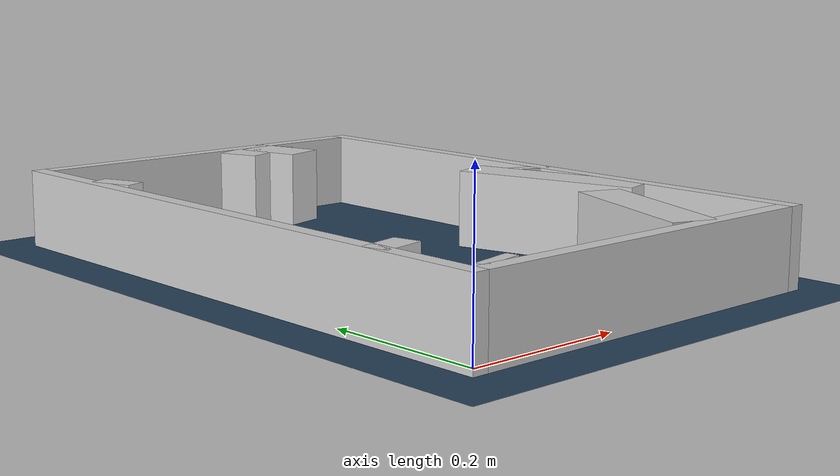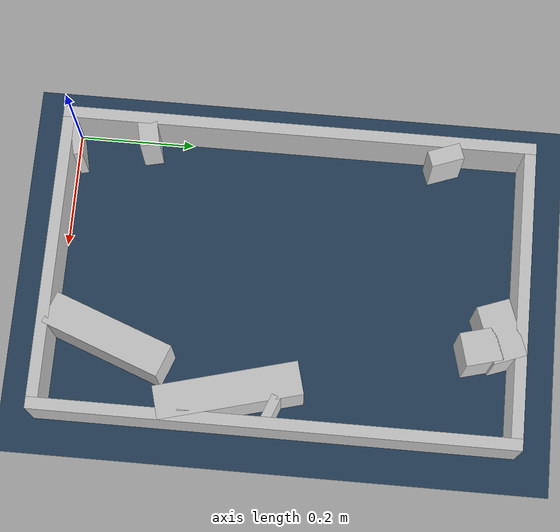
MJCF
<?xml version="1.0" ?>
<mujoco model="generated_real_template">
  <compiler angle="degree"/>
  <option timestep="0.002" integrator="implicitfast" iterations="100" cone="elliptic"/>
  <default>
    <geom density="1"/>
  </default>
  <asset>
    <texture builtin="gradient" height="3072" rgb1="0.3 0.5 0.7" rgb2="0 0 0" type="skybox" width="512"/>
    <texture builtin="checker" height="300" mark="edge" markrgb="0.8 0.8 0.8" name="groundplane" rgb1="0.2 0.3 0.4" rgb2="0.1 0.2 0.3" type="2d" width="300"/>
    <material name="groundplane" reflectance="0.2" texrepeat="5 5" texture="groundplane" texuniform="true"/>
  </asset>
  <worldbody>
    <light dir="0 0 -1" directional="true" pos="0 0 1.5"/>
    <geom name="floor" type="plane" condim="4" friction="0.5 0.005 0.001" material="groundplane" size="0 0 0.05"/>
    <body name="walls">
      <geom name="wall_boundary_left" type="box" condim="4" friction="1.0 0.005 0.0001" rgba="0.8 0.8 0.8 1" pos="-0.010000 0.387500 0.050000" euler="0 0 0.000000" size="0.010000 0.407500 0.050000"/>
      <geom name="wall_boundary_right" type="box" condim="4" friction="1.0 0.005 0.0001" rgba="0.8 0.8 0.8 1" pos="0.500000 0.387500 0.050000" euler="0 0 0.000000" size="0.010000 0.407500 0.050000"/>
      <geom name="wall_boundary_bottom" type="box" condim="4" friction="1.0 0.005 0.0001" rgba="0.8 0.8 0.8 1" pos="0.245000 -0.010000 0.050000" euler="0 0 0.000000" size="0.245000 0.010000 0.050000"/>
      <geom name="wall_boundary_top" type="box" condim="4" friction="1.0 0.005 0.0001" rgba="0.8 0.8 0.8 1" pos="0.245000 0.785000 0.050000" euler="0 0 0.000000" size="0.245000 0.010000 0.050000"/>
      <geom name="wall_inner_1_1" type="box" condim="4" friction="1.0 0.005 0.0001" rgba="0.8 0.8 0.8 1" pos="0.374647 0.099357 0.050000" euler="0 0 69.264774" size="0.106239 0.028500 0.050000"/>
      <geom name="wall_inner_1_2" type="box" condim="4" friction="1.0 0.005 0.0001" rgba="0.8 0.8 0.8 1" pos="0.480432 0.378789 0.050000" euler="0 0 69.264774" size="0.008228 0.028500 0.050000"/>
      <geom name="wall_inner_2_1" type="box" condim="4" friction="1.0 0.005 0.0001" rgba="0.8 0.8 0.8 1" pos="0.339144 0.732028 0.050000" euler="0 0 -75.168304" size="0.044453 0.028500 0.050000"/>
      <geom name="wall_inner_2_2" type="box" condim="4" friction="1.0 0.005 0.0001" rgba="0.8 0.8 0.8 1" pos="0.451256 0.308647 0.050000" euler="0 0 -75.168304" size="0.121854 0.028500 0.050000"/>
      <geom name="wall_inner_3_1" type="box" condim="4" friction="1.0 0.005 0.0001" rgba="0.8 0.8 0.8 1" pos="0.011446 0.128584 0.050000" euler="0 0 -77.656576" size="0.016857 0.028500 0.050000"/>
      <geom name="wall_inner_3_2" type="box" condim="4" friction="1.0 0.005 0.0001" rgba="0.8 0.8 0.8 1" pos="0.038001 0.007235 0.050000" euler="0 0 -77.656576" size="0.007406 0.028500 0.050000"/>
      <geom name="wall_inner_4_1" type="box" condim="4" friction="1.0 0.005 0.0001" rgba="0.8 0.8 0.8 1" pos="0.314072 0.751113 0.050000" euler="0 0 -159.915684" size="0.049851 0.028500 0.050000"/>
      <geom name="wall_inner_4_2" type="box" condim="4" friction="1.0 0.005 0.0001" rgba="0.8 0.8 0.8 1" pos="0.013341 0.641155 0.050000" euler="0 0 -159.915684" size="0.014205 0.028500 0.050000"/>
    </body>
  </worldbody>
</mujoco>
